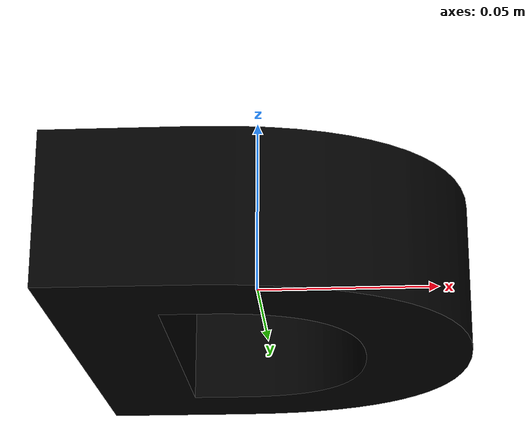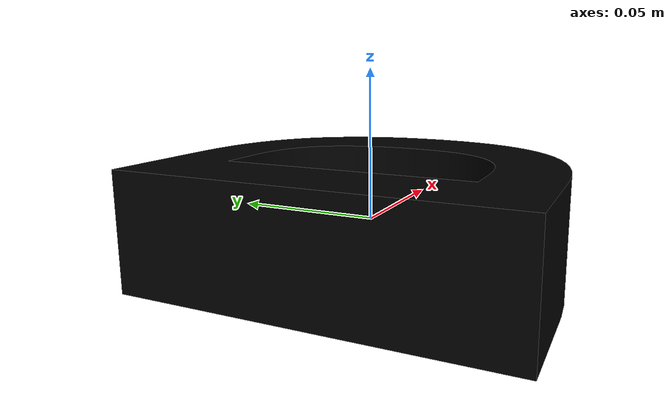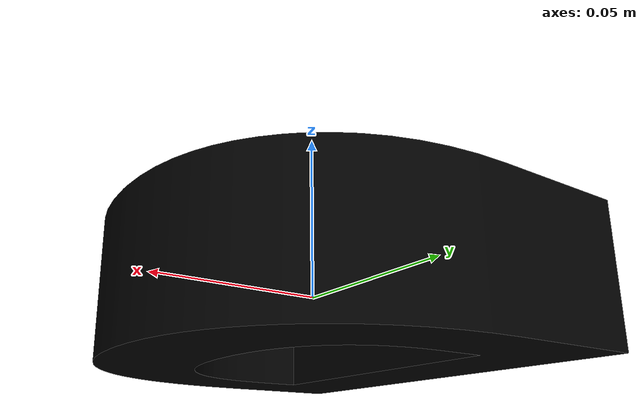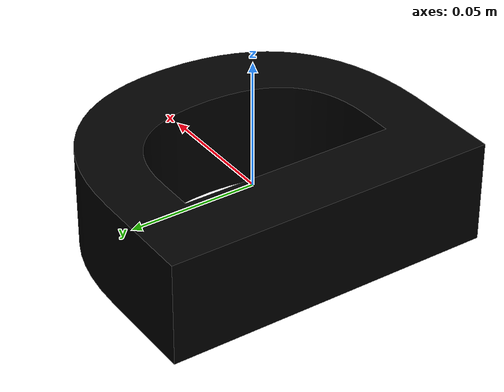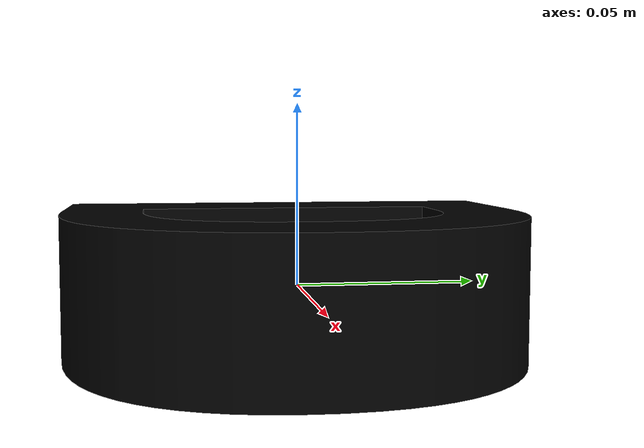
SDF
<?xml version="1.0"?>
<sdf version="1.7">
<!-- This SDF was autogenerated by controller_sdf_generation.py -->
  <model name="anything">
    <link name="smaller_d">
      <inertial>
        <pose>0 0 0 0 0 0</pose>
        <mass>1</mass>
        <inertia>
            <ixx>0.003</ixx>
            <iyy>0.003 </iyy>
            <izz>0.006 </izz>
            <ixy>0.0</ixy>
            <ixz>0.0</ixz>
            <iyz>0.0</iyz>
        </inertia>
      </inertial>
      <visual name="smaller_d">
        <pose>0 0 0 0 0 0</pose>
        <geometry>
          <mesh>
            <uri>smaller_d.obj</uri>
          </mesh>
        </geometry>
        <material>
          <diffuse>0 0 0 1</diffuse>
        </material>
      </visual>
      <collision name="smaller_d_volume">
        <pose>0 0 0 0 0 0</pose>
            <geometry>
          <mesh>
            <uri>smaller_d.obj</uri>
          </mesh>
        </geometry>
        <drake:proximity_properties>
          <drake:compliant_hydroelastic/>
          <drake:hydroelastic_modulus> 3.0e7 </drake:hydroelastic_modulus>
          <drake:mesh_resolution_hint> 0.18 </drake:mesh_resolution_hint>
          <drake:hunt_crossley_dissipation>10</drake:hunt_crossley_dissipation>
          <drake:mu_dynamic>0.3</drake:mu_dynamic>
        </drake:proximity_properties>
      </collision>
      <collision name="corner_nxynz">
        <geometry>
          <sphere>
            <radius>0.001</radius>
          </sphere>
        </geometry>
        <drake:proximity_properties>
        <drake:mu_dynamic>0.3</drake:mu_dynamic>
        </drake:proximity_properties>
        <pose> -0.04877820 0.06389970 -0.02000000 0 0 0</pose>
      </collision>
      <collision name="corner_nxnynz">
        <geometry>
          <sphere>
            <radius>0.001</radius>
          </sphere>
        </geometry>
        <drake:proximity_properties>
        <drake:mu_dynamic>0.3</drake:mu_dynamic>
        </drake:proximity_properties>
        <pose> -0.04877820 -0.06500000 -0.02000000 0 0 0</pose>
      </collision>
      <collision name="corner_xynz">
        <geometry>
          <sphere>
            <radius>0.001</radius>
          </sphere>
        </geometry>
        <drake:proximity_properties>
        <drake:mu_dynamic>0.3</drake:mu_dynamic>
        </drake:proximity_properties>
        <pose> 0.05817270 -0.00055015 -0.02000000 0 0 0</pose>
      </collision>

    </link>
  </model>
</sdf>
